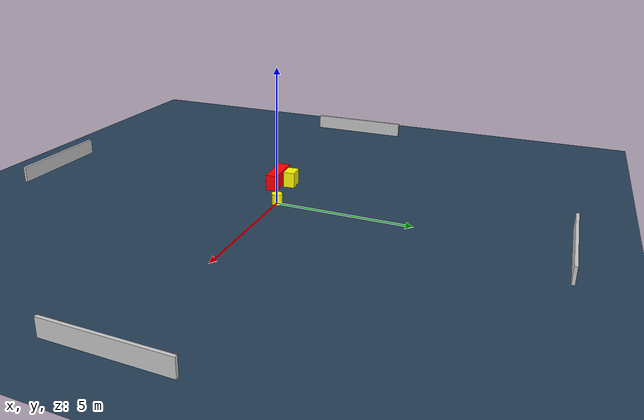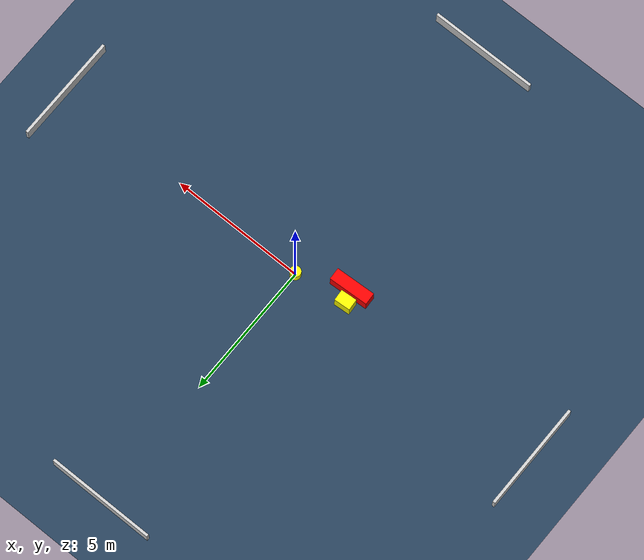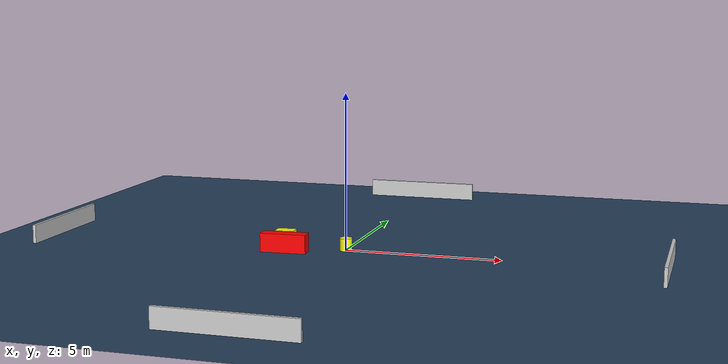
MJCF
<?xml version="1.0" ?>
<mujoco model="generated_environment">
  <option timestep="0.01" integrator="RK4" cone="elliptic"/>
  <default>
    <geom density="1"/>
  </default>
  <asset>
    <texture builtin="gradient" height="3072" name="skybox" rgb1="0.3 0.5 0.7" rgb2="0 0 0" type="skybox" width="512"/>
    <texture builtin="checker" height="300" name="groundplane" rgb1="0.2 0.3 0.4" rgb2="0.1 0.2 0.3" type="2d" width="300"/>
    <material name="groundplane" reflectance="0.2" texrepeat="5 5" texture="groundplane"/>
  </asset>
  <worldbody>
    <light dir="0 0 -1" directional="true" pos="0 0 1.5"/>
    <geom condim="3" friction="0.5 0.005 0.001" material="groundplane" name="floor" pos="0 0 0" size="0 0 0.05" type="plane"/>
    <body name="walls">
      <geom name="wall_1" condim="4" pos="-10.0 0.0 0.3" rgba="0.800000011920929 0.800000011920929 0.800000011920929 1.0" size="0.05 2.0 0.3" type="box"/>
      <geom name="wall_2" condim="4" pos="10.0 0.0 0.3" rgba="0.800000011920929 0.800000011920929 0.800000011920929 1.0" size="0.05 2.0 0.3" type="box"/>
      <geom name="wall_3" condim="4" pos="0.0 -10.0 0.3" rgba="0.800000011920929 0.800000011920929 0.800000011920929 1.0" size="2.0 0.05 0.3" type="box"/>
      <geom name="wall_4" condim="4" pos="0.0 10.0 0.3" rgba="0.800000011920929 0.800000011920929 0.800000011920929 1.0" size="2.0 0.05 0.3" type="box"/>
    </body>
    <body name="robot">
      <joint name="joint_x" type="slide" pos="0 0 0" axis="1 0 0"/>
      <joint name="joint_y" type="slide" pos="0 0 0" axis="0 1 0"/>
      <geom name="robot" type="cylinder" pos="0.0 0.0 0.2" size="0.2 0.2 0.0" mass="5.0" friction="1.0 0.005 0.0001" condim="4" rgba="1.0 1.0 0.0 1.0"/>
    </body>
    <body name="obstacle_1_movable">
      <geom name="obstacle_1_movable" condim="4" pos="-1.93780511738134 -0.24834395116323757 0.3" euler="0 0 184.26085381496083" friction="0.0 0.005 0.001" rgba="1.0 1.0 0.0 1.0" size="0.29778577899232767 0.2107331868100788 0.3" type="box" mass="0.1"/>
      <joint type="free"/>
    </body>
    <body name="obstacle_2_static">
      <geom name="obstacle_2_static" condim="4" pos="-1.806718095679733 -0.7469984127004193 0.3" euler="0 0 182.89818561823603" friction="0.0 0.005 0.001" rgba="1.0 0.0 0.0 1.0" size="0.7376950992959321 0.2225575147120169 0.3" type="box"/>
    </body>
  </worldbody>
  <actuator>
    <motor name="actuator_x" joint="joint_x" gear="1" ctrlrange="-1 1"/>
    <motor name="actuator_y" joint="joint_y" gear="1" ctrlrange="-1 1"/>
  </actuator>
</mujoco>
